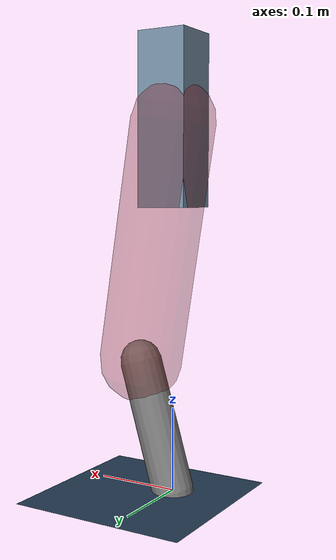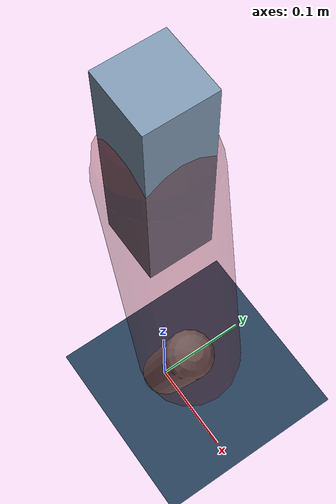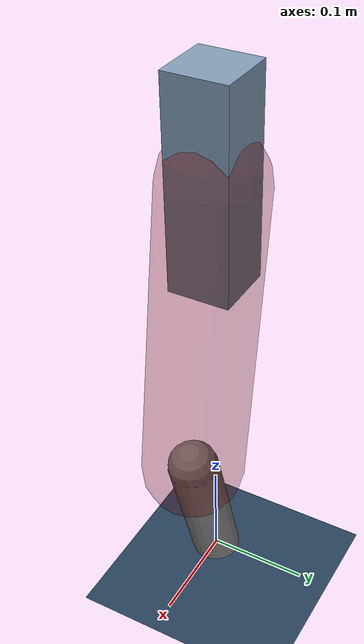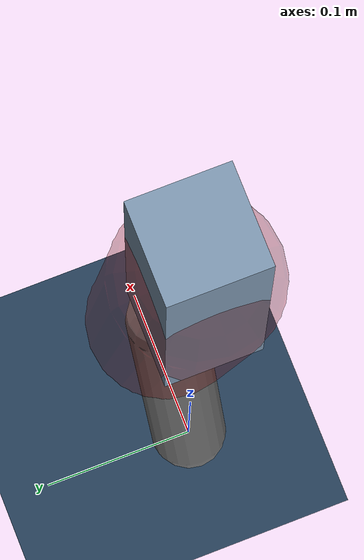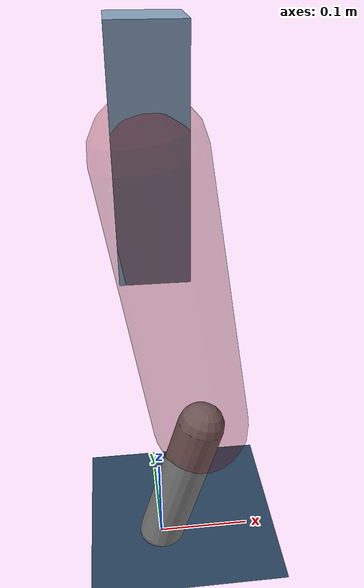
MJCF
<mujoco model="Hopper2D">
	<compiler inertiafromgeom="true" angle="radian" />
	<option timestep="0.001" integrator="implicit" cone="elliptic" solver="Newton" tolerance="1e-10" />

	<default>
		<geom contype="1" conaffinity="1" condim="3" friction="2 0.005 0.0001" solref="0.005 1" />
		<joint limited="true" damping="0.1" />
	</default>

	<asset>
		<texture name="skybox" type="skybox" builtin="gradient" rgb1=".4 .6 .8" rgb2="0 0 0" width="800" height="800" />
		<texture name="grid" type="2d" builtin="checker" rgb1=".1 .2 .3" rgb2=".2 .3 .4" width="300" height="300" mark="edge" markrgb=".2 .3 .4" />
		<material name="ground" texture="grid" texrepeat="1 1" texuniform="true" reflectance="0.1" />
		<material name="leg" rgba="0.5 0.6 0.7 1" />
	</asset>

	<worldbody>

		<geom name="floor" type="plane" size="5 5 0.25" material="ground" />

		<light directional="false" diffuse="0.8 0.8 0.8" specular="0.3 0.3 0.3" pos="0 0 2" dir="0 0 -1" />
		<light mode="targetbodycom" target="base" directional="false" diffuse="0.8 0.8 0.8" specular="0.3 0.3 0.3" pos="0 0 2" dir="0 0 -1" />

		<camera name="fixed" pos="0 -2 1" xyaxes="1 0 0 0 0 1" />
		<camera name="tracking" mode="trackcom" pos="0 -3 1" />

		<body name="root" pos="0 0 0.4396173588550038">
			<joint name="slide_x" type="slide" axis="1 0 0" range="-100 100" />
			<joint name="slide_z" type="slide" axis="0 0 1" range="0 10" />

			<body name="base" pos="0 0 0">
				<geom name="torso" type="box" size="0.03 0.03 0.1" mass="3.0839999999999996" material="leg" />

				<body name="link1" pos="0 0 0" euler="0 1.4139816148067736 0">
					<joint type="hinge" axis="0 -1 0" pos="0 0 0" name="hinge1" limited="true" range="-3.14 3.14" stiffness="0" damping="0.1" />
					<geom name="thigh" type="capsule" fromto="0 0 0 0.2888210570171249 0 0" size="0.05" rgba="0.5 0 0 0.3" mass="0.9586347482445248" />

					<body name="link2" pos="0.2888210570171249 0 0" euler="0 0.44114673853467684 0">
						<joint type="hinge" axis="0 -1 0" pos="0 0 0" name="hinge2" limited="true" range="-3.14 3.14" stiffness="0" damping="0.1" />
						<geom name="shank" type="capsule" fromto="0 0 0 0.1607963018378789 0 0" size="0.025" mass="0.3672370414703031" />

					</body>
				</body>
			</body>
		</body>
	</worldbody>

	<actuator>
		<motor name="torque1" joint="hinge1" ctrlrange="-106.92264350675823 106.92264350675823" ctrllimited="true" gear="1" />
		<motor name="torque2" joint="hinge2" ctrlrange="-137.64262295795544 137.64262295795544" ctrllimited="true" gear="1" />
	</actuator>
</mujoco>
